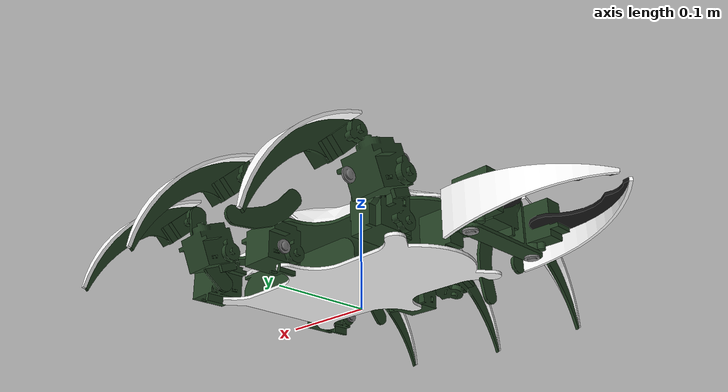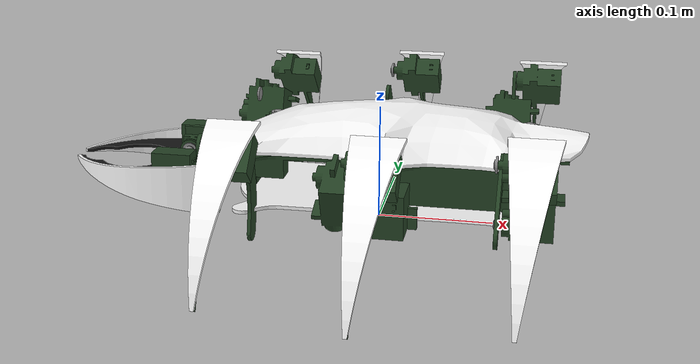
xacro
<?xml version="1.0"?>
<robot xmlns:xacro="http://www.ros.org/wiki/xacro" name="ant_robot_body">
    <xacro:arg name="initial_positions_file" default="initial_positions.yaml" />

    <xacro:include filename="ant.core.xacro" />
    <xacro:include filename="ant.ros2_control.xacro" />
    <xacro:include filename="ant.gazebo.xacro" />

    <xacro:ant_ros2_control name="GazeboSystem" initial_positions_file="$(arg initial_positions_file)"/>
</robot>
